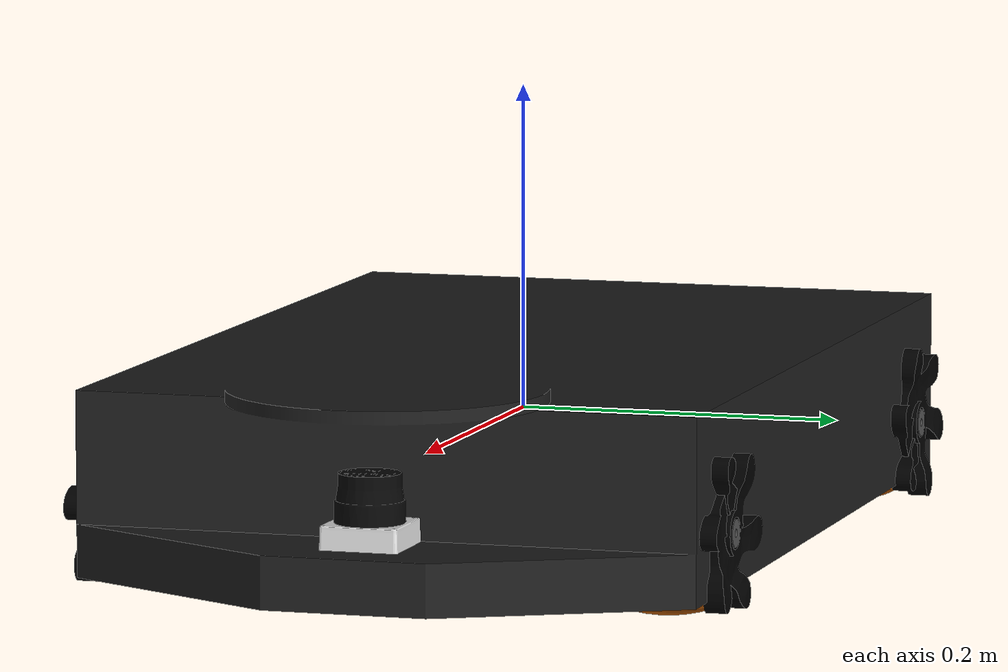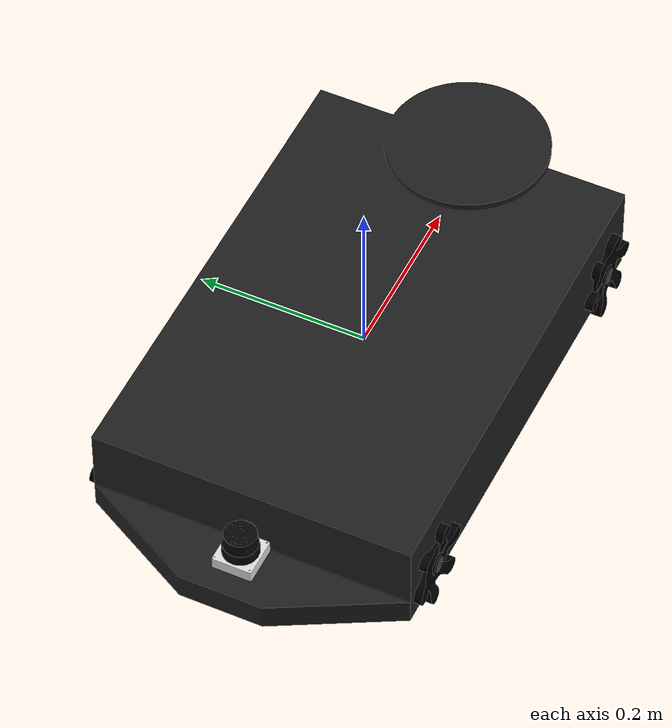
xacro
<?xml version="1.0"?>
<robot name="youbot" xmlns:xacro="http://www.ros.org/wiki/xacro">

  <!-- The following included files set up definitions of parts of the robot body -->
  <!-- misc common stuff? -->
  <xacro:include filename="$(find luh_youbot_description)/urdf/common.xacro" />

  <!-- youbot base -->
  <xacro:include filename="$(find luh_youbot_description)/urdf/youbot_base/base.urdf.xacro" />

  <!-- joint state publisher -->
  <xacro:include filename="$(find luh_youbot_description)/robots/youbot_gazebo.xacro" />

  <!-- Now we can start using the macros included above to define the actual youbot -->
  <xacro:youbot_base name="base" namespace=""/>

  <xacro:joint_state_publisher namespace="gazebo"/>

</robot>

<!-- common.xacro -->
<robot xmlns:xacro="http://www.ros.org/wiki/xacro">

	<xacro:property name="M_PI" value="3.1415926535897931" />

	<!-- Casters -->
	<xacro:property name="cal_caster_fl" value="0.0" />
	<xacro:property name="cal_caster_fr" value="0.0" />
	<xacro:property name="cal_caster_bl" value="0.0" />
	<xacro:property name="cal_caster_br" value="0.0" />

</robot>

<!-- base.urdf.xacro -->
<robot  xmlns:xacro="http://ros.org/wiki/xacro">

	<!-- sensors -->
	<xacro:include filename="$(find luh_youbot_description)/urdf/sensors/hokuyo_urg04_laser.urdf.xacro"/>
  <xacro:include filename="$(find luh_youbot_description)/urdf/youbot_base/base.gazebo.xacro" />
  <xacro:include filename="$(find luh_youbot_description)/urdf/youbot_base/bumper.gazebo.xacro" />

 	<!-- simplified box collision geometry for base -->
  	<property name="base_size_x" value="0.570" />
  	<property name="base_size_y" value="0.40" />
  	<property name="base_size_z" value="0.100" />
	  <property name="base_mass" value="22.0" />

	<property name="wheel_offset_x" value="0.228"  />
  	<property name="wheel_offset_y" value="0.158"  />
  	<property name="wheel_offset_z" value="-0.034" />
	<property name="wheel_mass" value="0.4" />

	<property name="wheel_radius" value="0.05" />
	<property name="wheel_length" value="0.07" />

	<property name="wheel_joint_damping" value="0.0" />
	<property name="wheel_joint_friction" value="0.0" />
	<property name="wheel_joint_effort" value="30" />
	<property name="wheel_joint_velocity" value="10" />
	<property name="wheel_joint_safety_k_velocity" value="10.0" />

	<xacro:macro name="youbot_base" params="name namespace">

		<link name="${name}_footprint">
      			<visual>
        			<origin xyz="0 0 0" rpy="0 0 0" />
        			<geometry>
          				<box size="0.001 0.001 0.001" />
        			</geometry>
               			<material name="Red" />
      			</visual>
      			<collision>
        			<origin xyz="0 0 ${-base_size_z / 2.0}" rpy="0 0 0" />
        			<geometry>
          				<box size="0.001 0.001 0.001" />
        			</geometry>
      			</collision>
    		</link>

    		<joint name="${name}_footprint_joint" type="fixed">
      			<origin xyz="0 0 0" rpy="0 0 0" />
      			<child link="${name}_link" />
      			<parent link="${name}_footprint"/>
    		</joint>

		<link name="${name}_link">
      			<inertial>
        			<mass value="${base_mass}" />
        			<origin xyz="0 0 0" />
        			<inertia ixx="5.652232699207" ixy="-0.009719934438" ixz="1.293988226423"
                 			iyy="5.669473158652" iyz="-0.007379583694" izz="3.683196351726" />
      				</inertial>
      			<visual>
        			<origin xyz="0 0 0" rpy="0 0 0" />
        			<geometry>
          				<mesh filename="package://luh_youbot_description/meshes/youbot_base/base.dae"/>
        			</geometry>
        			<material name="Black"/>
      			</visual>
      			<collision>
        			<origin xyz="0 0 0" rpy="0 0 0" />
        			<geometry>
					<mesh filename="package://luh_youbot_description/meshes/youbot_base/base_convex.dae"/>
	       			</geometry>
      			</collision>
    		</link>

		<!-- base laser front -->
    		<xacro:hokuyo_urg04_laser name="${name}_laser_front" parent="${name}" ros_topic="scan" update_rate="10" min_angle="-1.57" max_angle="1.57" >
     			 <origin xyz="0.309 0 -0.03" rpy="0 0 0" />
    		</xacro:hokuyo_urg04_laser>

		<!-- base laser back -->
    		<xacro:hokuyo_urg04_laser  name="${name}_laser_back" parent="${name}" ros_topic="scan_back" update_rate="10" min_angle="1.57" max_angle="-1.57" >
     			 <origin xyz="-0.309 0 -0.03" rpy="0 0 ${M_PI}" />
    		</xacro:hokuyo_urg04_laser>

	        <!-- front left wheel -->
		<joint name="wheel_joint_fl" type="continuous">
			<origin xyz="${wheel_offset_x} ${wheel_offset_y} ${wheel_offset_z}" rpy="0 0 0" />
      			<axis xyz="0 1 0" />
      			<limit effort="${wheel_joint_effort}" velocity="${wheel_joint_velocity}"/>
      			<dynamics damping="${wheel_joint_damping}" friction="${wheel_joint_friction}" />
			<safety_controller k_velocity="${wheel_joint_safety_k_velocity}" />
			<parent link="${name}_link"/>
      			<child link="wheel_link_fl" />
    		</joint>

    		<link name="wheel_link_fl">
      			<inertial>
        		<mass value="${wheel_mass}" />
        		<origin xyz="0 0 0" />
       			<inertia  ixx="0.012411765597" ixy="-0.000711733678" ixz="0.00050272983"
                  		iyy="0.015218160428" iyz="-0.000004273467" izz="0.011763977943" />
      			</inertial>
      			<visual>
        			<origin xyz="0 0 0" rpy="0 0 0" />
                                <geometry>
				        <mesh filename="package://luh_youbot_description/meshes/youbot_base/wheel1.dae" />
                                </geometry>
      			</visual>
      			<collision>
        			<origin xyz="0 0 0" rpy="${M_PI/2} 0 0" />
        			<geometry>
        		       		<cylinder radius="${wheel_radius}" length="${wheel_length}"/>
        	       		</geometry>
      			</collision>
    		</link>

	<!-- front right wheel -->
		<joint name="wheel_joint_fr" type="continuous">
			<origin xyz="${wheel_offset_x} ${-wheel_offset_y} ${wheel_offset_z}" rpy="0 0 0" />
      			<axis xyz="0 1 0" />
      			<limit effort="${wheel_joint_effort}" velocity="${wheel_joint_velocity}"/>
      			<dynamics damping="${wheel_joint_damping}" friction="${wheel_joint_friction}" />
			<safety_controller k_velocity="${wheel_joint_safety_k_velocity}" />
			<parent link="${name}_link"/>
      			<child link="wheel_link_fr" />
    		</joint>

    		<link name="wheel_link_fr">
      			<inertial>
        		<mass value="${wheel_mass}" />
        		<origin xyz="0 0 0" />
       			<inertia  ixx="0.012411765597" ixy="-0.000711733678" ixz="0.00050272983"
                  		iyy="0.015218160428" iyz="-0.000004273467" izz="0.011763977943" />
      			</inertial>
      			<visual>
        			<origin xyz="0 0 0" rpy="0 0 0" />
				<geometry>
          				<mesh filename="package://luh_youbot_description/meshes/youbot_base/wheel2.dae" />
        			</geometry>
      			</visual>
      			<collision>
        			<origin xyz="0 0 0" rpy="${M_PI/2} 0 0" />
        			<geometry>
        		       		<cylinder radius="${wheel_radius}" length="${wheel_length}"/>
        	       		</geometry>
      			</collision>
    		</link>

	        <!-- back left wheel -->
		<joint name="wheel_joint_bl" type="continuous">
			<origin xyz="${-wheel_offset_x} ${wheel_offset_y} ${wheel_offset_z}" rpy="0 0 0" />
      			<axis xyz="0 1 0" />
      			<limit effort="${wheel_joint_effort}" velocity="${wheel_joint_velocity}"/>
      			<dynamics damping="${wheel_joint_damping}" friction="${wheel_joint_friction}" />
			<safety_controller k_velocity="${wheel_joint_safety_k_velocity}" />
			<parent link="${name}_link"/>
      			<child link="wheel_link_bl" />
    		</joint>

    		<link name="wheel_link_bl">
      			<inertial>
        		<mass value="${wheel_mass}" />
        		<origin xyz="0 0 0" />
       			<inertia  ixx="0.012411765597" ixy="-0.000711733678" ixz="0.00050272983"
                  		iyy="0.015218160428" iyz="-0.000004273467" izz="0.011763977943" />
      			</inertial>
      			<visual>
        			<origin xyz="0 0 0" rpy="0 0 0" />
				<geometry>
          				<mesh filename="package://luh_youbot_description/meshes/youbot_base/wheel2.dae" />
        			</geometry>
      			</visual>
      			<collision>
        			<origin xyz="0 0 0" rpy="${M_PI/2} 0 0" />
        			<geometry>
        		       		<cylinder radius="${wheel_radius}" length="${wheel_length}"/>
        	       		</geometry>
      			</collision>
    		</link>

	<!-- back right wheel -->
		<joint name="wheel_joint_br" type="continuous">
			<origin xyz="${-wheel_offset_x} ${-wheel_offset_y} ${wheel_offset_z}" rpy="0 0 0" />
      			<axis xyz="0 1 0" />
      			<limit effort="${wheel_joint_effort}" velocity="${wheel_joint_velocity}"/>
      			<dynamics damping="${wheel_joint_damping}" friction="${wheel_joint_friction}" />
			<safety_controller k_velocity="${wheel_joint_safety_k_velocity}" />
			<parent link="${name}_link"/>
      			<child link="wheel_link_br" />
    		</joint>

    		<link name="wheel_link_br">
      			<inertial>
        		<mass value="${wheel_mass}" />
        		<origin xyz="0 0 0" />
       			<inertia  ixx="0.012411765597" ixy="-0.000711733678" ixz="0.00050272983"
                  		iyy="0.015218160428" iyz="-0.000004273467" izz="0.011763977943" />
      			</inertial>
      			<visual>
        			<origin xyz="0 0 0" rpy="0 0 0" />
				<geometry>
          				<mesh filename="package://luh_youbot_description/meshes/youbot_base/wheel1.dae" />
        			</geometry>
      			</visual>
      			<collision>
        			<origin xyz="0 0 0" rpy="${M_PI/2} 0 0" />
        			<geometry>
        		       		<cylinder radius="${wheel_radius}" length="${wheel_length}"/>
        	       		</geometry>
      			</collision>
    		</link>

        <xacro:youbot_base_controller namespace="gazebo"/>
        <xacro:youbot_base_bumper namespace="${namespace}"/>

	</xacro:macro>

</robot>

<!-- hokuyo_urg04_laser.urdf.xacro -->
<robot xmlns:xacro="http://ros.org/wiki/xacro">

  <xacro:include filename="$(find luh_youbot_description)/urdf/sensors/hokuyo_urg04_laser.gazebo.xacro" />

  <xacro:macro name="hokuyo_urg04_laser" params="name parent *origin ros_topic update_rate min_angle max_angle">
    <joint name="${name}_hokuyo_urg04_laser_joint" type="fixed">
      <axis xyz="0 1 0" />
      <insert_block name="origin" />
      <parent link="${parent}_link"/>
      <child link="${name}_link"/>
    </joint>
    <link name="${name}_link" type="laser">
      <inertial>
        <mass value="0.16" />
        <origin xyz="0 0 0" rpy="0 0 0" />
        <inertia ixx="0.1" ixy="0" ixz="0" iyy="0.1" iyz="0" izz="0.1" />
      </inertial>
      <visual>
      	<origin xyz="0 0 0" rpy="0 0 0" />
	<geometry>
		<mesh filename="package://luh_youbot_description/meshes/sensors/hokuyo.dae" />
	</geometry>
      </visual>

      <collision>
		<origin xyz="0 0 0" rpy="0 0 0" />
		<geometry>
			<mesh filename="package://luh_youbot_description/meshes/sensors/hokuyo_convex.dae" />
		</geometry>
	</collision>
    </link>

    <!-- gazebo extensions -->
    <xacro:hokuyo_urg04_laser_gazebo name="${name}" ros_topic="${ros_topic}" update_rate="${update_rate}" min_angle="${min_angle}" max_angle="${max_angle}" />

</xacro:macro>
</robot>
